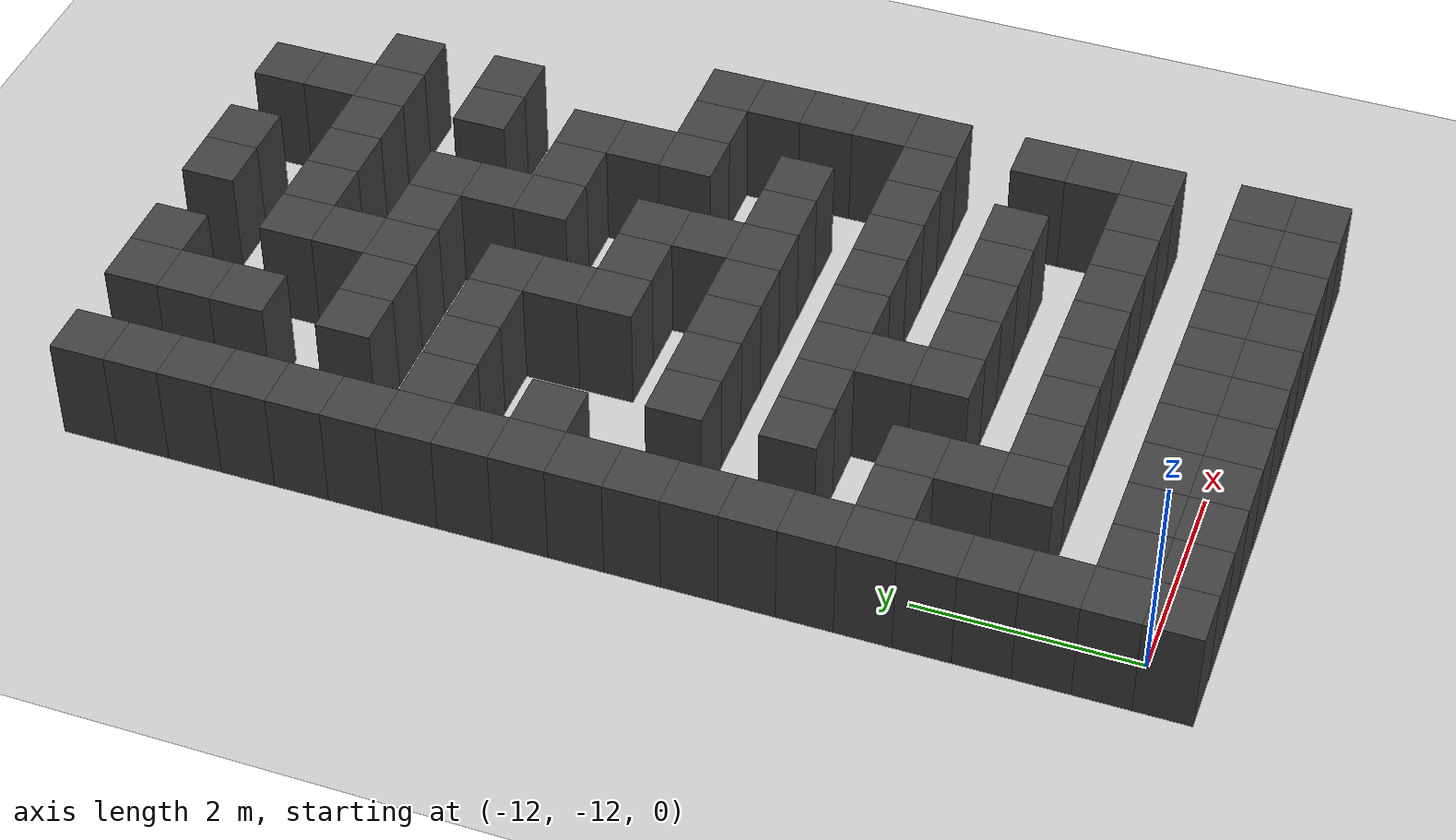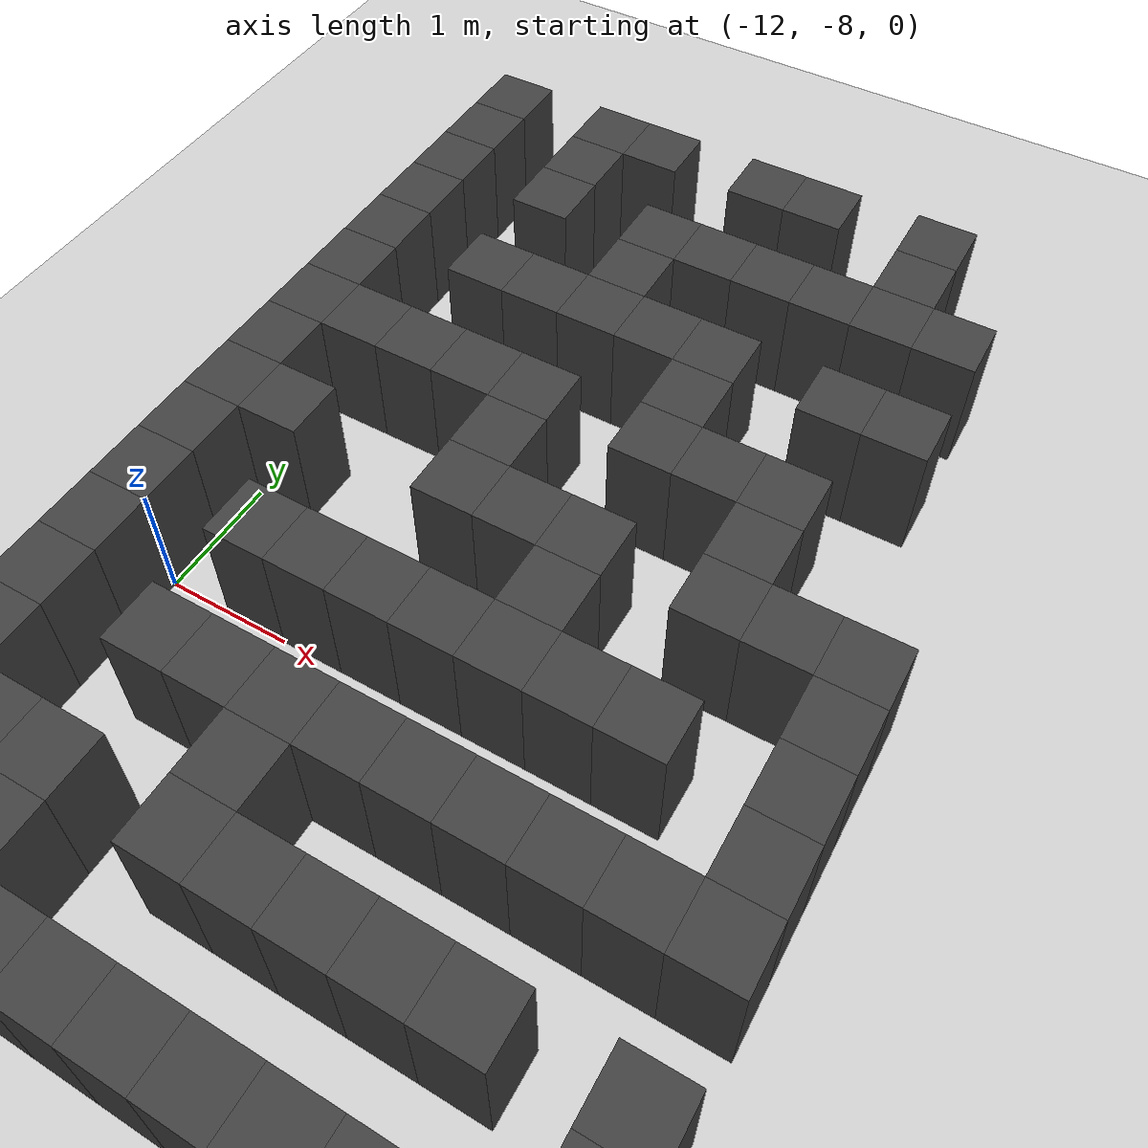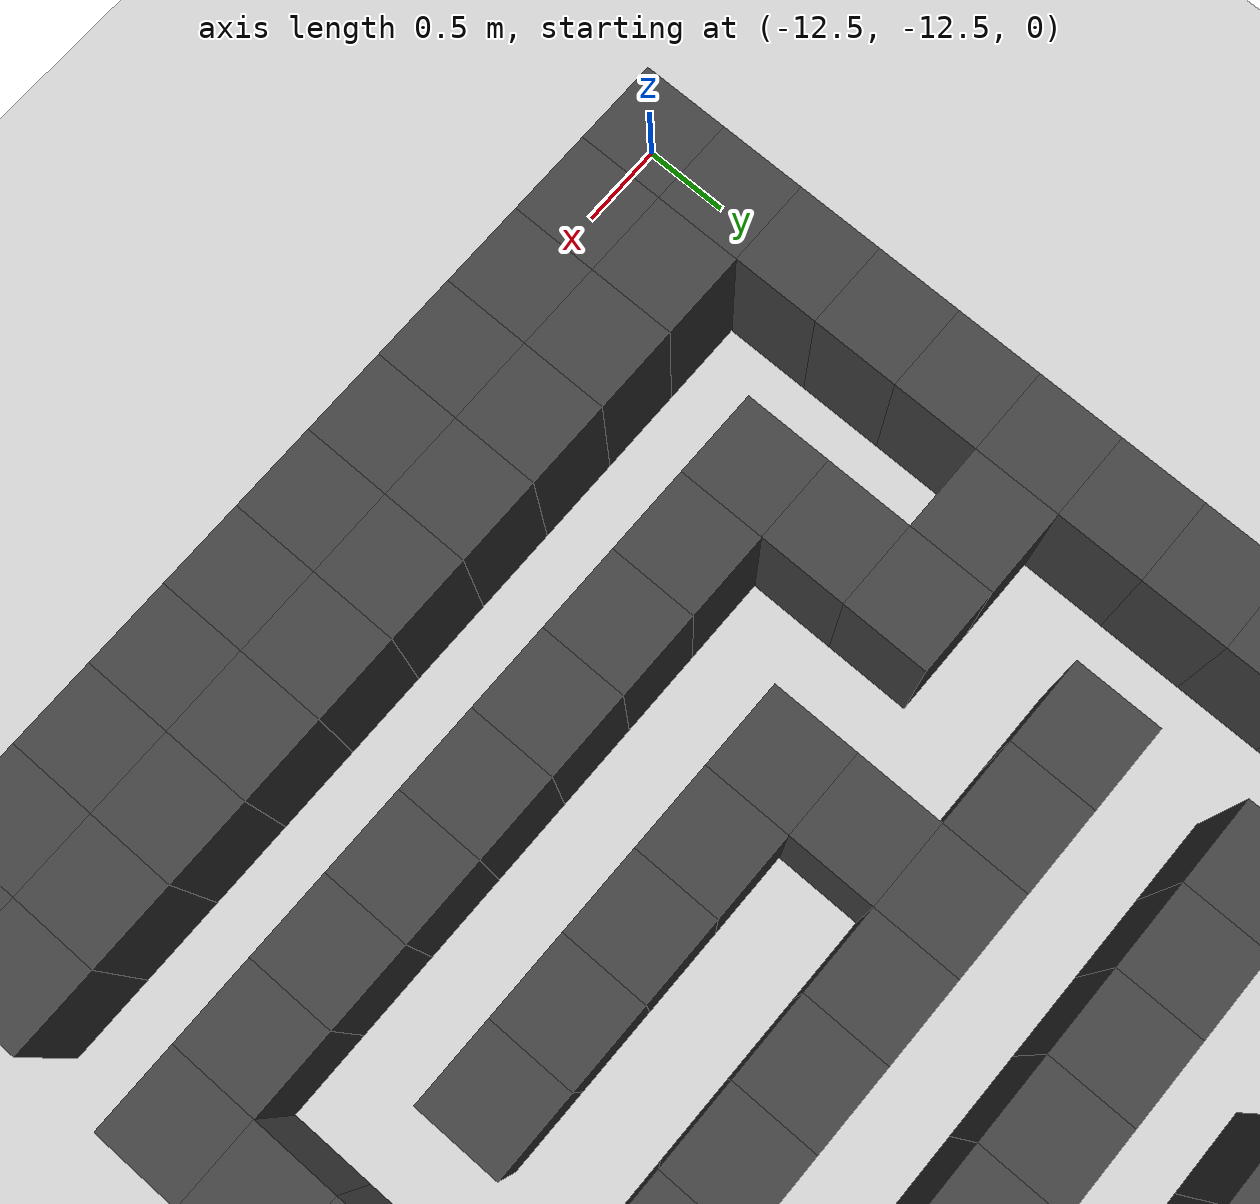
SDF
<sdf version="1.7">
 <world name="map_19217">
  <model name="ground_plane">
   <static>true</static>
   <link name="link">
    <collision name="collision">
     <geometry><plane><normal>0 0 1</normal><size>200 200</size></plane></geometry>
    </collision>
    <visual name="visual">
     <geometry><plane><normal>0 0 1</normal><size>200 200</size></plane></geometry>
     <material><ambient>0.8 0.8 0.8 1</ambient><diffuse>0.8 0.8 0.8 1</diffuse></material>
    </visual>
   </link>
  </model>
  <model name="maze_environment">
   <static>true</static>
   <link name="wall_769">
    <pose>-12.250 -2.750 0.500 0 0 0</pose>
    <collision name="col"><geometry><box><size>0.5 0.5 1.0</size></box></geometry></collision>
    <visual name="vis">
     <geometry><box><size>0.5 0.5 1.0</size></box></geometry>
     <material><ambient>0.15 0.15 0.15 1</ambient><diffuse>0.25 0.25 0.25 1</diffuse></material>
    </visual>
   </link>
   <link name="wall_770">
    <pose>-11.250 -2.750 0.500 0 0 0</pose>
    <collision name="col"><geometry><box><size>0.5 0.5 1.0</size></box></geometry></collision>
    <visual name="vis">
     <geometry><box><size>0.5 0.5 1.0</size></box></geometry>
     <material><ambient>0.15 0.15 0.15 1</ambient><diffuse>0.25 0.25 0.25 1</diffuse></material>
    </visual>
   </link>
   <link name="wall_771">
    <pose>-10.750 -2.750 0.500 0 0 0</pose>
    <collision name="col"><geometry><box><size>0.5 0.5 1.0</size></box></geometry></collision>
    <visual name="vis">
     <geometry><box><size>0.5 0.5 1.0</size></box></geometry>
     <material><ambient>0.15 0.15 0.15 1</ambient><diffuse>0.25 0.25 0.25 1</diffuse></material>
    </visual>
   </link>
   <link name="wall_772">
    <pose>-9.750 -2.750 0.500 0 0 0</pose>
    <collision name="col"><geometry><box><size>0.5 0.5 1.0</size></box></geometry></collision>
    <visual name="vis">
     <geometry><box><size>0.5 0.5 1.0</size></box></geometry>
     <material><ambient>0.15 0.15 0.15 1</ambient><diffuse>0.25 0.25 0.25 1</diffuse></material>
    </visual>
   </link>
   <link name="wall_773">
    <pose>-9.250 -2.750 0.500 0 0 0</pose>
    <collision name="col"><geometry><box><size>0.5 0.5 1.0</size></box></geometry></collision>
    <visual name="vis">
     <geometry><box><size>0.5 0.5 1.0</size></box></geometry>
     <material><ambient>0.15 0.15 0.15 1</ambient><diffuse>0.25 0.25 0.25 1</diffuse></material>
    </visual>
   </link>
   <link name="wall_774">
    <pose>-8.250 -2.750 0.500 0 0 0</pose>
    <collision name="col"><geometry><box><size>0.5 0.5 1.0</size></box></geometry></collision>
    <visual name="vis">
     <geometry><box><size>0.5 0.5 1.0</size></box></geometry>
     <material><ambient>0.15 0.15 0.15 1</ambient><diffuse>0.25 0.25 0.25 1</diffuse></material>
    </visual>
   </link>
   <link name="wall_808">
    <pose>-12.250 -3.250 0.500 0 0 0</pose>
    <collision name="col"><geometry><box><size>0.5 0.5 1.0</size></box></geometry></collision>
    <visual name="vis">
     <geometry><box><size>0.5 0.5 1.0</size></box></geometry>
     <material><ambient>0.15 0.15 0.15 1</ambient><diffuse>0.25 0.25 0.25 1</diffuse></material>
    </visual>
   </link>
   <link name="wall_809">
    <pose>-11.250 -3.250 0.500 0 0 0</pose>
    <collision name="col"><geometry><box><size>0.5 0.5 1.0</size></box></geometry></collision>
    <visual name="vis">
     <geometry><box><size>0.5 0.5 1.0</size></box></geometry>
     <material><ambient>0.15 0.15 0.15 1</ambient><diffuse>0.25 0.25 0.25 1</diffuse></material>
    </visual>
   </link>
   <link name="wall_810">
    <pose>-8.250 -3.250 0.500 0 0 0</pose>
    <collision name="col"><geometry><box><size>0.5 0.5 1.0</size></box></geometry></collision>
    <visual name="vis">
     <geometry><box><size>0.5 0.5 1.0</size></box></geometry>
     <material><ambient>0.15 0.15 0.15 1</ambient><diffuse>0.25 0.25 0.25 1</diffuse></material>
    </visual>
   </link>
   <link name="wall_819">
    <pose>-12.250 -3.750 0.500 0 0 0</pose>
    <collision name="col"><geometry><box><size>0.5 0.5 1.0</size></box></geometry></collision>
    <visual name="vis">
     <geometry><box><size>0.5 0.5 1.0</size></box></geometry>
     <material><ambient>0.15 0.15 0.15 1</ambient><diffuse>0.25 0.25 0.25 1</diffuse></material>
    </visual>
   </link>
   <link name="wall_820">
    <pose>-11.250 -3.750 0.500 0 0 0</pose>
    <collision name="col"><geometry><box><size>0.5 0.5 1.0</size></box></geometry></collision>
    <visual name="vis">
     <geometry><box><size>0.5 0.5 1.0</size></box></geometry>
     <material><ambient>0.15 0.15 0.15 1</ambient><diffuse>0.25 0.25 0.25 1</diffuse></material>
    </visual>
   </link>
   <link name="wall_821">
    <pose>-10.250 -3.750 0.500 0 0 0</pose>
    <collision name="col"><geometry><box><size>0.5 0.5 1.0</size></box></geometry></collision>
    <visual name="vis">
     <geometry><box><size>0.5 0.5 1.0</size></box></geometry>
     <material><ambient>0.15 0.15 0.15 1</ambient><diffuse>0.25 0.25 0.25 1</diffuse></material>
    </visual>
   </link>
   <link name="wall_822">
    <pose>-9.750 -3.750 0.500 0 0 0</pose>
    <collision name="col"><geometry><box><size>0.5 0.5 1.0</size></box></geometry></collision>
    <visual name="vis">
     <geometry><box><size>0.5 0.5 1.0</size></box></geometry>
     <material><ambient>0.15 0.15 0.15 1</ambient><diffuse>0.25 0.25 0.25 1</diffuse></material>
    </visual>
   </link>
   <link name="wall_823">
    <pose>-9.250 -3.750 0.500 0 0 0</pose>
    <collision name="col"><geometry><box><size>0.5 0.5 1.0</size></box></geometry></collision>
    <visual name="vis">
     <geometry><box><size>0.5 0.5 1.0</size></box></geometry>
     <material><ambient>0.15 0.15 0.15 1</ambient><diffuse>0.25 0.25 0.25 1</diffuse></material>
    </visual>
   </link>
   <link name="wall_824">
    <pose>-8.750 -3.750 0.500 0 0 0</pose>
    <collision name="col"><geometry><box><size>0.5 0.5 1.0</size></box></geometry></collision>
    <visual name="vis">
     <geometry><box><size>0.5 0.5 1.0</size></box></geometry>
     <material><ambient>0.15 0.15 0.15 1</ambient><diffuse>0.25 0.25 0.25 1</diffuse></material>
    </visual>
   </link>
   <link name="wall_825">
    <pose>-8.250 -3.750 0.500 0 0 0</pose>
    <collision name="col"><geometry><box><size>0.5 0.5 1.0</size></box></geometry></collision>
    <visual name="vis">
     <geometry><box><size>0.5 0.5 1.0</size></box></geometry>
     <material><ambient>0.15 0.15 0.15 1</ambient><diffuse>0.25 0.25 0.25 1</diffuse></material>
    </visual>
   </link>
   <link name="wall_826">
    <pose>-7.750 -3.750 0.500 0 0 0</pose>
    <collision name="col"><geometry><box><size>0.5 0.5 1.0</size></box></geometry></collision>
    <visual name="vis">
     <geometry><box><size>0.5 0.5 1.0</size></box></geometry>
     <material><ambient>0.15 0.15 0.15 1</ambient><diffuse>0.25 0.25 0.25 1</diffuse></material>
    </visual>
   </link>
   <link name="wall_859">
    <pose>-12.250 -4.250 0.500 0 0 0</pose>
    <collision name="col"><geometry><box><size>0.5 0.5 1.0</size></box></geometry></collision>
    <visual name="vis">
     <geometry><box><size>0.5 0.5 1.0</size></box></geometry>
     <material><ambient>0.15 0.15 0.15 1</ambient><diffuse>0.25 0.25 0.25 1</diffuse></material>
    </visual>
   </link>
   <link name="wall_860">
    <pose>-10.250 -4.250 0.500 0 0 0</pose>
    <collision name="col"><geometry><box><size>0.5 0.5 1.0</size></box></geometry></collision>
    <visual name="vis">
     <geometry><box><size>0.5 0.5 1.0</size></box></geometry>
     <material><ambient>0.15 0.15 0.15 1</ambient><diffuse>0.25 0.25 0.25 1</diffuse></material>
    </visual>
   </link>
   <link name="wall_870">
    <pose>-12.250 -4.750 0.500 0 0 0</pose>
    <collision name="col"><geometry><box><size>0.5 0.5 1.0</size></box></geometry></collision>
    <visual name="vis">
     <geometry><box><size>0.5 0.5 1.0</size></box></geometry>
     <material><ambient>0.15 0.15 0.15 1</ambient><diffuse>0.25 0.25 0.25 1</diffuse></material>
    </visual>
   </link>
   <link name="wall_871">
    <pose>-11.250 -4.750 0.500 0 0 0</pose>
    <collision name="col"><geometry><box><size>0.5 0.5 1.0</size></box></geometry></collision>
    <visual name="vis">
     <geometry><box><size>0.5 0.5 1.0</size></box></geometry>
     <material><ambient>0.15 0.15 0.15 1</ambient><diffuse>0.25 0.25 0.25 1</diffuse></material>
    </visual>
   </link>
   <link name="wall_872">
    <pose>-10.750 -4.750 0.500 0 0 0</pose>
    <collision name="col"><geometry><box><size>0.5 0.5 1.0</size></box></geometry></collision>
    <visual name="vis">
     <geometry><box><size>0.5 0.5 1.0</size></box></geometry>
     <material><ambient>0.15 0.15 0.15 1</ambient><diffuse>0.25 0.25 0.25 1</diffuse></material>
    </visual>
   </link>
   <link name="wall_873">
    <pose>-10.250 -4.750 0.500 0 0 0</pose>
    <collision name="col"><geometry><box><size>0.5 0.5 1.0</size></box></geometry></collision>
    <visual name="vis">
     <geometry><box><size>0.5 0.5 1.0</size></box></geometry>
     <material><ambient>0.15 0.15 0.15 1</ambient><diffuse>0.25 0.25 0.25 1</diffuse></material>
    </visual>
   </link>
   <link name="wall_874">
    <pose>-9.750 -4.750 0.500 0 0 0</pose>
    <collision name="col"><geometry><box><size>0.5 0.5 1.0</size></box></geometry></collision>
    <visual name="vis">
     <geometry><box><size>0.5 0.5 1.0</size></box></geometry>
     <material><ambient>0.15 0.15 0.15 1</ambient><diffuse>0.25 0.25 0.25 1</diffuse></material>
    </visual>
   </link>
   <link name="wall_875">
    <pose>-9.250 -4.750 0.500 0 0 0</pose>
    <collision name="col"><geometry><box><size>0.5 0.5 1.0</size></box></geometry></collision>
    <visual name="vis">
     <geometry><box><size>0.5 0.5 1.0</size></box></geometry>
     <material><ambient>0.15 0.15 0.15 1</ambient><diffuse>0.25 0.25 0.25 1</diffuse></material>
    </visual>
   </link>
   <link name="wall_876">
    <pose>-8.250 -4.750 0.500 0 0 0</pose>
    <collision name="col"><geometry><box><size>0.5 0.5 1.0</size></box></geometry></collision>
    <visual name="vis">
     <geometry><box><size>0.5 0.5 1.0</size></box></geometry>
     <material><ambient>0.15 0.15 0.15 1</ambient><diffuse>0.25 0.25 0.25 1</diffuse></material>
    </visual>
   </link>
   <link name="wall_877">
    <pose>-7.750 -4.750 0.500 0 0 0</pose>
    <collision name="col"><geometry><box><size>0.5 0.5 1.0</size></box></geometry></collision>
    <visual name="vis">
     <geometry><box><size>0.5 0.5 1.0</size></box></geometry>
     <material><ambient>0.15 0.15 0.15 1</ambient><diffuse>0.25 0.25 0.25 1</diffuse></material>
    </visual>
   </link>
   <link name="wall_911">
    <pose>-12.250 -5.250 0.500 0 0 0</pose>
    <collision name="col"><geometry><box><size>0.5 0.5 1.0</size></box></geometry></collision>
    <visual name="vis">
     <geometry><box><size>0.5 0.5 1.0</size></box></geometry>
     <material><ambient>0.15 0.15 0.15 1</ambient><diffuse>0.25 0.25 0.25 1</diffuse></material>
    </visual>
   </link>
   <link name="wall_912">
    <pose>-9.250 -5.250 0.500 0 0 0</pose>
    <collision name="col"><geometry><box><size>0.5 0.5 1.0</size></box></geometry></collision>
    <visual name="vis">
     <geometry><box><size>0.5 0.5 1.0</size></box></geometry>
     <material><ambient>0.15 0.15 0.15 1</ambient><diffuse>0.25 0.25 0.25 1</diffuse></material>
    </visual>
   </link>
   <link name="wall_921">
    <pose>-12.250 -5.750 0.500 0 0 0</pose>
    <collision name="col"><geometry><box><size>0.5 0.5 1.0</size></box></geometry></collision>
    <visual name="vis">
     <geometry><box><size>0.5 0.5 1.0</size></box></geometry>
     <material><ambient>0.15 0.15 0.15 1</ambient><diffuse>0.25 0.25 0.25 1</diffuse></material>
    </visual>
   </link>
   <link name="wall_922">
    <pose>-11.750 -5.750 0.500 0 0 0</pose>
    <collision name="col"><geometry><box><size>0.5 0.5 1.0</size></box></geometry></collision>
    <visual name="vis">
     <geometry><box><size>0.5 0.5 1.0</size></box></geometry>
     <material><ambient>0.15 0.15 0.15 1</ambient><diffuse>0.25 0.25 0.25 1</diffuse></material>
    </visual>
   </link>
   <link name="wall_923">
    <pose>-11.250 -5.750 0.500 0 0 0</pose>
    <collision name="col"><geometry><box><size>0.5 0.5 1.0</size></box></geometry></collision>
    <visual name="vis">
     <geometry><box><size>0.5 0.5 1.0</size></box></geometry>
     <material><ambient>0.15 0.15 0.15 1</ambient><diffuse>0.25 0.25 0.25 1</diffuse></material>
    </visual>
   </link>
   <link name="wall_924">
    <pose>-10.750 -5.750 0.500 0 0 0</pose>
    <collision name="col"><geometry><box><size>0.5 0.5 1.0</size></box></geometry></collision>
    <visual name="vis">
     <geometry><box><size>0.5 0.5 1.0</size></box></geometry>
     <material><ambient>0.15 0.15 0.15 1</ambient><diffuse>0.25 0.25 0.25 1</diffuse></material>
    </visual>
   </link>
   <link name="wall_925">
    <pose>-10.250 -5.750 0.500 0 0 0</pose>
    <collision name="col"><geometry><box><size>0.5 0.5 1.0</size></box></geometry></collision>
    <visual name="vis">
     <geometry><box><size>0.5 0.5 1.0</size></box></geometry>
     <material><ambient>0.15 0.15 0.15 1</ambient><diffuse>0.25 0.25 0.25 1</diffuse></material>
    </visual>
   </link>
   <link name="wall_926">
    <pose>-9.250 -5.750 0.500 0 0 0</pose>
    <collision name="col"><geometry><box><size>0.5 0.5 1.0</size></box></geometry></collision>
    <visual name="vis">
     <geometry><box><size>0.5 0.5 1.0</size></box></geometry>
     <material><ambient>0.15 0.15 0.15 1</ambient><diffuse>0.25 0.25 0.25 1</diffuse></material>
    </visual>
   </link>
   <link name="wall_927">
    <pose>-8.750 -5.750 0.500 0 0 0</pose>
    <collision name="col"><geometry><box><size>0.5 0.5 1.0</size></box></geometry></collision>
    <visual name="vis">
     <geometry><box><size>0.5 0.5 1.0</size></box></geometry>
     <material><ambient>0.15 0.15 0.15 1</ambient><diffuse>0.25 0.25 0.25 1</diffuse></material>
    </visual>
   </link>
   <link name="wall_928">
    <pose>-8.250 -5.750 0.500 0 0 0</pose>
    <collision name="col"><geometry><box><size>0.5 0.5 1.0</size></box></geometry></collision>
    <visual name="vis">
     <geometry><box><size>0.5 0.5 1.0</size></box></geometry>
     <material><ambient>0.15 0.15 0.15 1</ambient><diffuse>0.25 0.25 0.25 1</diffuse></material>
    </visual>
   </link>
   <link name="wall_961">
    <pose>-12.250 -6.250 0.500 0 0 0</pose>
    <collision name="col"><geometry><box><size>0.5 0.5 1.0</size></box></geometry></collision>
    <visual name="vis">
     <geometry><box><size>0.5 0.5 1.0</size></box></geometry>
     <material><ambient>0.15 0.15 0.15 1</ambient><diffuse>0.25 0.25 0.25 1</diffuse></material>
    </visual>
   </link>
   <link name="wall_962">
    <pose>-10.250 -6.250 0.500 0 0 0</pose>
    <collision name="col"><geometry><box><size>0.5 0.5 1.0</size></box></geometry></collision>
    <visual name="vis">
     <geometry><box><size>0.5 0.5 1.0</size></box></geometry>
     <material><ambient>0.15 0.15 0.15 1</ambient><diffuse>0.25 0.25 0.25 1</diffuse></material>
    </visual>
   </link>
   <link name="wall_963">
    <pose>-8.250 -6.250 0.500 0 0 0</pose>
    <collision name="col"><geometry><box><size>0.5 0.5 1.0</size></box></geometry></collision>
    <visual name="vis">
     <geometry><box><size>0.5 0.5 1.0</size></box></geometry>
     <material><ambient>0.15 0.15 0.15 1</ambient><diffuse>0.25 0.25 0.25 1</diffuse></material>
    </visual>
   </link>
   <link name="wall_972">
    <pose>-12.250 -6.750 0.500 0 0 0</pose>
    <collision name="col"><geometry><box><size>0.5 0.5 1.0</size></box></geometry></collision>
    <visual name="vis">
     <geometry><box><size>0.5 0.5 1.0</size></box></geometry>
     <material><ambient>0.15 0.15 0.15 1</ambient><diffuse>0.25 0.25 0.25 1</diffuse></material>
    </visual>
   </link>
   <link name="wall_973">
    <pose>-11.750 -6.750 0.500 0 0 0</pose>
    <collision name="col"><geometry><box><size>0.5 0.5 1.0</size></box></geometry></collision>
    <visual name="vis">
     <geometry><box><size>0.5 0.5 1.0</size></box></geometry>
     <material><ambient>0.15 0.15 0.15 1</ambient><diffuse>0.25 0.25 0.25 1</diffuse></material>
    </visual>
   </link>
   <link name="wall_974">
    <pose>-10.250 -6.750 0.500 0 0 0</pose>
    <collision name="col"><geometry><box><size>0.5 0.5 1.0</size></box></geometry></collision>
    <visual name="vis">
     <geometry><box><size>0.5 0.5 1.0</size></box></geometry>
     <material><ambient>0.15 0.15 0.15 1</ambient><diffuse>0.25 0.25 0.25 1</diffuse></material>
    </visual>
   </link>
   <link name="wall_975">
    <pose>-9.750 -6.750 0.500 0 0 0</pose>
    <collision name="col"><geometry><box><size>0.5 0.5 1.0</size></box></geometry></collision>
    <visual name="vis">
     <geometry><box><size>0.5 0.5 1.0</size></box></geometry>
     <material><ambient>0.15 0.15 0.15 1</ambient><diffuse>0.25 0.25 0.25 1</diffuse></material>
    </visual>
   </link>
   <link name="wall_976">
    <pose>-9.250 -6.750 0.500 0 0 0</pose>
    <collision name="col"><geometry><box><size>0.5 0.5 1.0</size></box></geometry></collision>
    <visual name="vis">
     <geometry><box><size>0.5 0.5 1.0</size></box></geometry>
     <material><ambient>0.15 0.15 0.15 1</ambient><diffuse>0.25 0.25 0.25 1</diffuse></material>
    </visual>
   </link>
   <link name="wall_977">
    <pose>-8.250 -6.750 0.500 0 0 0</pose>
    <collision name="col"><geometry><box><size>0.5 0.5 1.0</size></box></geometry></collision>
    <visual name="vis">
     <geometry><box><size>0.5 0.5 1.0</size></box></geometry>
     <material><ambient>0.15 0.15 0.15 1</ambient><diffuse>0.25 0.25 0.25 1</diffuse></material>
    </visual>
   </link>
   <link name="wall_978">
    <pose>-7.750 -6.750 0.500 0 0 0</pose>
    <collision name="col"><geometry><box><size>0.5 0.5 1.0</size></box></geometry></collision>
    <visual name="vis">
     <geometry><box><size>0.5 0.5 1.0</size></box></geometry>
     <material><ambient>0.15 0.15 0.15 1</ambient><diffuse>0.25 0.25 0.25 1</diffuse></material>
    </visual>
   </link>
   <link name="wall_979">
    <pose>-7.250 -6.750 0.500 0 0 0</pose>
    <collision name="col"><geometry><box><size>0.5 0.5 1.0</size></box></geometry></collision>
    <visual name="vis">
     <geometry><box><size>0.5 0.5 1.0</size></box></geometry>
     <material><ambient>0.15 0.15 0.15 1</ambient><diffuse>0.25 0.25 0.25 1</diffuse></material>
    </visual>
   </link>
   <link name="wall_1007">
    <pose>-12.250 -7.250 0.500 0 0 0</pose>
    <collision name="col"><geometry><box><size>0.5 0.5 1.0</size></box></geometry></collision>
    <visual name="vis">
     <geometry><box><size>0.5 0.5 1.0</size></box></geometry>
     <material><ambient>0.15 0.15 0.15 1</ambient><diffuse>0.25 0.25 0.25 1</diffuse></material>
    </visual>
   </link>
   <link name="wall_1008">
    <pose>-9.250 -7.250 0.500 0 0 0</pose>
    <collision name="col"><geometry><box><size>0.5 0.5 1.0</size></box></geometry></collision>
    <visual name="vis">
     <geometry><box><size>0.5 0.5 1.0</size></box></geometry>
     <material><ambient>0.15 0.15 0.15 1</ambient><diffuse>0.25 0.25 0.25 1</diffuse></material>
    </visual>
   </link>
   <link name="wall_1009">
    <pose>-7.250 -7.250 0.500 0 0 0</pose>
    <collision name="col"><geometry><box><size>0.5 0.5 1.0</size></box></geometry></collision>
    <visual name="vis">
     <geometry><box><size>0.5 0.5 1.0</size></box></geometry>
     <material><ambient>0.15 0.15 0.15 1</ambient><diffuse>0.25 0.25 0.25 1</diffuse></material>
    </visual>
   </link>
   <link name="wall_1023">
    <pose>-12.250 -7.750 0.500 0 0 0</pose>
    <collision name="col"><geometry><box><size>0.5 0.5 1.0</size></box></geometry></collision>
    <visual name="vis">
     <geometry><box><size>0.5 0.5 1.0</size></box></geometry>
     <material><ambient>0.15 0.15 0.15 1</ambient><diffuse>0.25 0.25 0.25 1</diffuse></material>
    </visual>
   </link>
   <link name="wall_1024">
    <pose>-11.250 -7.750 0.500 0 0 0</pose>
    <collision name="col"><geometry><box><size>0.5 0.5 1.0</size></box></geometry></collision>
    <visual name="vis">
     <geometry><box><size>0.5 0.5 1.0</size></box></geometry>
     <material><ambient>0.15 0.15 0.15 1</ambient><diffuse>0.25 0.25 0.25 1</diffuse></material>
    </visual>
   </link>
   <link name="wall_1025">
    <pose>-10.750 -7.750 0.500 0 0 0</pose>
    <collision name="col"><geometry><box><size>0.5 0.5 1.0</size></box></geometry></collision>
    <visual name="vis">
     <geometry><box><size>0.5 0.5 1.0</size></box></geometry>
     <material><ambient>0.15 0.15 0.15 1</ambient><diffuse>0.25 0.25 0.25 1</diffuse></material>
    </visual>
   </link>
   <link name="wall_1026">
    <pose>-10.250 -7.750 0.500 0 0 0</pose>
    <collision name="col"><geometry><box><size>0.5 0.5 1.0</size></box></geometry></collision>
    <visual name="vis">
     <geometry><box><size>0.5 0.5 1.0</size></box></geometry>
     <material><ambient>0.15 0.15 0.15 1</ambient><diffuse>0.25 0.25 0.25 1</diffuse></material>
    </visual>
   </link>
   <link name="wall_1027">
    <pose>-9.750 -7.750 0.500 0 0 0</pose>
    <collision name="col"><geometry><box><size>0.5 0.5 1.0</size></box></geometry></collision>
    <visual name="vis">
     <geometry><box><size>0.5 0.5 1.0</size></box></geometry>
     <material><ambient>0.15 0.15 0.15 1</ambient><diffuse>0.25 0.25 0.25 1</diffuse></material>
    </visual>
   </link>
   <link name="wall_1028">
    <pose>-9.250 -7.750 0.500 0 0 0</pose>
    <collision name="col"><geometry><box><size>0.5 0.5 1.0</size></box></geometry></collision>
    <visual name="vis">
     <geometry><box><size>0.5 0.5 1.0</size></box></geometry>
     <material><ambient>0.15 0.15 0.15 1</ambient><diffuse>0.25 0.25 0.25 1</diffuse></material>
    </visual>
   </link>
   <link name="wall_1029">
    <pose>-8.750 -7.750 0.500 0 0 0</pose>
    <collision name="col"><geometry><box><size>0.5 0.5 1.0</size></box></geometry></collision>
    <visual name="vis">
     <geometry><box><size>0.5 0.5 1.0</size></box></geometry>
     <material><ambient>0.15 0.15 0.15 1</ambient><diffuse>0.25 0.25 0.25 1</diffuse></material>
    </visual>
   </link>
   <link name="wall_1030">
    <pose>-8.250 -7.750 0.500 0 0 0</pose>
    <collision name="col"><geometry><box><size>0.5 0.5 1.0</size></box></geometry></collision>
    <visual name="vis">
     <geometry><box><size>0.5 0.5 1.0</size></box></geometry>
     <material><ambient>0.15 0.15 0.15 1</ambient><diffuse>0.25 0.25 0.25 1</diffuse></material>
    </visual>
   </link>
   <link name="wall_1031">
    <pose>-7.250 -7.750 0.500 0 0 0</pose>
    <collision name="col"><geometry><box><size>0.5 0.5 1.0</size></box></geometry></collision>
    <visual name="vis">
     <geometry><box><size>0.5 0.5 1.0</size></box></geometry>
     <material><ambient>0.15 0.15 0.15 1</ambient><diffuse>0.25 0.25 0.25 1</diffuse></material>
    </visual>
   </link>
   <link name="wall_1060">
    <pose>-12.250 -8.250 0.500 0 0 0</pose>
    <collision name="col"><geometry><box><size>0.5 0.5 1.0</size></box></geometry></collision>
    <visual name="vis">
     <geometry><box><size>0.5 0.5 1.0</size></box></geometry>
     <material><ambient>0.15 0.15 0.15 1</ambient><diffuse>0.25 0.25 0.25 1</diffuse></material>
    </visual>
   </link>
   <link name="wall_1061">
    <pose>-7.250 -8.250 0.500 0 0 0</pose>
    <collision name="col"><geometry><box><size>0.5 0.5 1.0</size></box></geometry></collision>
    <visual name="vis">
     <geometry><box><size>0.5 0.5 1.0</size></box></geometry>
     <material><ambient>0.15 0.15 0.15 1</ambient><diffuse>0.25 0.25 0.25 1</diffuse></material>
    </visual>
   </link>
   <link name="wall_1072">
    <pose>-12.250 -8.750 0.500 0 0 0</pose>
    <collision name="col"><geometry><box><size>0.5 0.5 1.0</size></box></geometry></collision>
    <visual name="vis">
     <geometry><box><size>0.5 0.5 1.0</size></box></geometry>
     <material><ambient>0.15 0.15 0.15 1</ambient><diffuse>0.25 0.25 0.25 1</diffuse></material>
    </visual>
   </link>
   <link name="wall_1073">
    <pose>-11.250 -8.750 0.500 0 0 0</pose>
    <collision name="col"><geometry><box><size>0.5 0.5 1.0</size></box></geometry></collision>
    <visual name="vis">
     <geometry><box><size>0.5 0.5 1.0</size></box></geometry>
     <material><ambient>0.15 0.15 0.15 1</ambient><diffuse>0.25 0.25 0.25 1</diffuse></material>
    </visual>
   </link>
   <link name="wall_1074">
    <pose>-10.750 -8.750 0.500 0 0 0</pose>
    <collision name="col"><geometry><box><size>0.5 0.5 1.0</size></box></geometry></collision>
    <visual name="vis">
     <geometry><box><size>0.5 0.5 1.0</size></box></geometry>
     <material><ambient>0.15 0.15 0.15 1</ambient><diffuse>0.25 0.25 0.25 1</diffuse></material>
    </visual>
   </link>
   <link name="wall_1075">
    <pose>-10.250 -8.750 0.500 0 0 0</pose>
    <collision name="col"><geometry><box><size>0.5 0.5 1.0</size></box></geometry></collision>
    <visual name="vis">
     <geometry><box><size>0.5 0.5 1.0</size></box></geometry>
     <material><ambient>0.15 0.15 0.15 1</ambient><diffuse>0.25 0.25 0.25 1</diffuse></material>
    </visual>
   </link>
   <link name="wall_1076">
    <pose>-9.750 -8.750 0.500 0 0 0</pose>
    <collision name="col"><geometry><box><size>0.5 0.5 1.0</size></box></geometry></collision>
    <visual name="vis">
     <geometry><box><size>0.5 0.5 1.0</size></box></geometry>
     <material><ambient>0.15 0.15 0.15 1</ambient><diffuse>0.25 0.25 0.25 1</diffuse></material>
    </visual>
   </link>
   <link name="wall_1077">
    <pose>-9.250 -8.750 0.500 0 0 0</pose>
    <collision name="col"><geometry><box><size>0.5 0.5 1.0</size></box></geometry></collision>
    <visual name="vis">
     <geometry><box><size>0.5 0.5 1.0</size></box></geometry>
     <material><ambient>0.15 0.15 0.15 1</ambient><diffuse>0.25 0.25 0.25 1</diffuse></material>
    </visual>
   </link>
   <link name="wall_1078">
    <pose>-8.750 -8.750 0.500 0 0 0</pose>
    <collision name="col"><geometry><box><size>0.5 0.5 1.0</size></box></geometry></collision>
    <visual name="vis">
     <geometry><box><size>0.5 0.5 1.0</size></box></geometry>
     <material><ambient>0.15 0.15 0.15 1</ambient><diffuse>0.25 0.25 0.25 1</diffuse></material>
    </visual>
   </link>
   <link name="wall_1079">
    <pose>-8.250 -8.750 0.500 0 0 0</pose>
    <collision name="col"><geometry><box><size>0.5 0.5 1.0</size></box></geometry></collision>
    <visual name="vis">
     <geometry><box><size>0.5 0.5 1.0</size></box></geometry>
     <material><ambient>0.15 0.15 0.15 1</ambient><diffuse>0.25 0.25 0.25 1</diffuse></material>
    </visual>
   </link>
   <link name="wall_1080">
    <pose>-7.750 -8.750 0.500 0 0 0</pose>
    <collision name="col"><geometry><box><size>0.5 0.5 1.0</size></box></geometry></collision>
    <visual name="vis">
     <geometry><box><size>0.5 0.5 1.0</size></box></geometry>
     <material><ambient>0.15 0.15 0.15 1</ambient><diffuse>0.25 0.25 0.25 1</diffuse></material>
    </visual>
   </link>
   <link name="wall_1081">
    <pose>-7.250 -8.750 0.500 0 0 0</pose>
    <collision name="col"><geometry><box><size>0.5 0.5 1.0</size></box></geometry></collision>
    <visual name="vis">
     <geometry><box><size>0.5 0.5 1.0</size></box></geometry>
     <material><ambient>0.15 0.15 0.15 1</ambient><diffuse>0.25 0.25 0.25 1</diffuse></material>
    </visual>
   </link>
   <link name="wall_1113">
    <pose>-12.250 -9.250 0.500 0 0 0</pose>
    <collision name="col"><geometry><box><size>0.5 0.5 1.0</size></box></geometry></collision>
    <visual name="vis">
     <geometry><box><size>0.5 0.5 1.0</size></box></geometry>
     <material><ambient>0.15 0.15 0.15 1</ambient><diffuse>0.25 0.25 0.25 1</diffuse></material>
    </visual>
   </link>
   <link name="wall_1114">
    <pose>-10.250 -9.250 0.500 0 0 0</pose>
    <collision name="col"><geometry><box><size>0.5 0.5 1.0</size></box></geometry></collision>
    <visual name="vis">
     <geometry><box><size>0.5 0.5 1.0</size></box></geometry>
     <material><ambient>0.15 0.15 0.15 1</ambient><diffuse>0.25 0.25 0.25 1</diffuse></material>
    </visual>
   </link>
   <link name="wall_1126">
    <pose>-12.250 -9.750 0.500 0 0 0</pose>
    <collision name="col"><geometry><box><size>0.5 0.5 1.0</size></box></geometry></collision>
    <visual name="vis">
     <geometry><box><size>0.5 0.5 1.0</size></box></geometry>
     <material><ambient>0.15 0.15 0.15 1</ambient><diffuse>0.25 0.25 0.25 1</diffuse></material>
    </visual>
   </link>
   <link name="wall_1127">
    <pose>-11.750 -9.750 0.500 0 0 0</pose>
    <collision name="col"><geometry><box><size>0.5 0.5 1.0</size></box></geometry></collision>
    <visual name="vis">
     <geometry><box><size>0.5 0.5 1.0</size></box></geometry>
     <material><ambient>0.15 0.15 0.15 1</ambient><diffuse>0.25 0.25 0.25 1</diffuse></material>
    </visual>
   </link>
   <link name="wall_1128">
    <pose>-11.250 -9.750 0.500 0 0 0</pose>
    <collision name="col"><geometry><box><size>0.5 0.5 1.0</size></box></geometry></collision>
    <visual name="vis">
     <geometry><box><size>0.5 0.5 1.0</size></box></geometry>
     <material><ambient>0.15 0.15 0.15 1</ambient><diffuse>0.25 0.25 0.25 1</diffuse></material>
    </visual>
   </link>
   <link name="wall_1129">
    <pose>-10.250 -9.750 0.500 0 0 0</pose>
    <collision name="col"><geometry><box><size>0.5 0.5 1.0</size></box></geometry></collision>
    <visual name="vis">
     <geometry><box><size>0.5 0.5 1.0</size></box></geometry>
     <material><ambient>0.15 0.15 0.15 1</ambient><diffuse>0.25 0.25 0.25 1</diffuse></material>
    </visual>
   </link>
   <link name="wall_1130">
    <pose>-9.750 -9.750 0.500 0 0 0</pose>
    <collision name="col"><geometry><box><size>0.5 0.5 1.0</size></box></geometry></collision>
    <visual name="vis">
     <geometry><box><size>0.5 0.5 1.0</size></box></geometry>
     <material><ambient>0.15 0.15 0.15 1</ambient><diffuse>0.25 0.25 0.25 1</diffuse></material>
    </visual>
   </link>
   <link name="wall_1131">
    <pose>-9.250 -9.750 0.500 0 0 0</pose>
    <collision name="col"><geometry><box><size>0.5 0.5 1.0</size></box></geometry></collision>
    <visual name="vis">
     <geometry><box><size>0.5 0.5 1.0</size></box></geometry>
     <material><ambient>0.15 0.15 0.15 1</ambient><diffuse>0.25 0.25 0.25 1</diffuse></material>
    </visual>
   </link>
   <link name="wall_1132">
    <pose>-8.750 -9.750 0.500 0 0 0</pose>
    <collision name="col"><geometry><box><size>0.5 0.5 1.0</size></box></geometry></collision>
    <visual name="vis">
     <geometry><box><size>0.5 0.5 1.0</size></box></geometry>
     <material><ambient>0.15 0.15 0.15 1</ambient><diffuse>0.25 0.25 0.25 1</diffuse></material>
    </visual>
   </link>
   <link name="wall_1133">
    <pose>-8.250 -9.750 0.500 0 0 0</pose>
    <collision name="col"><geometry><box><size>0.5 0.5 1.0</size></box></geometry></collision>
    <visual name="vis">
     <geometry><box><size>0.5 0.5 1.0</size></box></geometry>
     <material><ambient>0.15 0.15 0.15 1</ambient><diffuse>0.25 0.25 0.25 1</diffuse></material>
    </visual>
   </link>
   <link name="wall_1134">
    <pose>-7.250 -9.750 0.500 0 0 0</pose>
    <collision name="col"><geometry><box><size>0.5 0.5 1.0</size></box></geometry></collision>
    <visual name="vis">
     <geometry><box><size>0.5 0.5 1.0</size></box></geometry>
     <material><ambient>0.15 0.15 0.15 1</ambient><diffuse>0.25 0.25 0.25 1</diffuse></material>
    </visual>
   </link>
   <link name="wall_1163">
    <pose>-12.250 -10.250 0.500 0 0 0</pose>
    <collision name="col"><geometry><box><size>0.5 0.5 1.0</size></box></geometry></collision>
    <visual name="vis">
     <geometry><box><size>0.5 0.5 1.0</size></box></geometry>
     <material><ambient>0.15 0.15 0.15 1</ambient><diffuse>0.25 0.25 0.25 1</diffuse></material>
    </visual>
   </link>
   <link name="wall_1164">
    <pose>-11.250 -10.250 0.500 0 0 0</pose>
    <collision name="col"><geometry><box><size>0.5 0.5 1.0</size></box></geometry></collision>
    <visual name="vis">
     <geometry><box><size>0.5 0.5 1.0</size></box></geometry>
     <material><ambient>0.15 0.15 0.15 1</ambient><diffuse>0.25 0.25 0.25 1</diffuse></material>
    </visual>
   </link>
   <link name="wall_1165">
    <pose>-7.250 -10.250 0.500 0 0 0</pose>
    <collision name="col"><geometry><box><size>0.5 0.5 1.0</size></box></geometry></collision>
    <visual name="vis">
     <geometry><box><size>0.5 0.5 1.0</size></box></geometry>
     <material><ambient>0.15 0.15 0.15 1</ambient><diffuse>0.25 0.25 0.25 1</diffuse></material>
    </visual>
   </link>
   <link name="wall_1178">
    <pose>-12.250 -10.750 0.500 0 0 0</pose>
    <collision name="col"><geometry><box><size>0.5 0.5 1.0</size></box></geometry></collision>
    <visual name="vis">
     <geometry><box><size>0.5 0.5 1.0</size></box></geometry>
     <material><ambient>0.15 0.15 0.15 1</ambient><diffuse>0.25 0.25 0.25 1</diffuse></material>
    </visual>
   </link>
   <link name="wall_1179">
    <pose>-11.250 -10.750 0.500 0 0 0</pose>
    <collision name="col"><geometry><box><size>0.5 0.5 1.0</size></box></geometry></collision>
    <visual name="vis">
     <geometry><box><size>0.5 0.5 1.0</size></box></geometry>
     <material><ambient>0.15 0.15 0.15 1</ambient><diffuse>0.25 0.25 0.25 1</diffuse></material>
    </visual>
   </link>
   <link name="wall_1180">
    <pose>-10.750 -10.750 0.500 0 0 0</pose>
    <collision name="col"><geometry><box><size>0.5 0.5 1.0</size></box></geometry></collision>
    <visual name="vis">
     <geometry><box><size>0.5 0.5 1.0</size></box></geometry>
     <material><ambient>0.15 0.15 0.15 1</ambient><diffuse>0.25 0.25 0.25 1</diffuse></material>
    </visual>
   </link>
   <link name="wall_1181">
    <pose>-10.250 -10.750 0.500 0 0 0</pose>
    <collision name="col"><geometry><box><size>0.5 0.5 1.0</size></box></geometry></collision>
    <visual name="vis">
     <geometry><box><size>0.5 0.5 1.0</size></box></geometry>
     <material><ambient>0.15 0.15 0.15 1</ambient><diffuse>0.25 0.25 0.25 1</diffuse></material>
    </visual>
   </link>
   <link name="wall_1182">
    <pose>-9.750 -10.750 0.500 0 0 0</pose>
    <collision name="col"><geometry><box><size>0.5 0.5 1.0</size></box></geometry></collision>
    <visual name="vis">
     <geometry><box><size>0.5 0.5 1.0</size></box></geometry>
     <material><ambient>0.15 0.15 0.15 1</ambient><diffuse>0.25 0.25 0.25 1</diffuse></material>
    </visual>
   </link>
   <link name="wall_1183">
    <pose>-9.250 -10.750 0.500 0 0 0</pose>
    <collision name="col"><geometry><box><size>0.5 0.5 1.0</size></box></geometry></collision>
    <visual name="vis">
     <geometry><box><size>0.5 0.5 1.0</size></box></geometry>
     <material><ambient>0.15 0.15 0.15 1</ambient><diffuse>0.25 0.25 0.25 1</diffuse></material>
    </visual>
   </link>
   <link name="wall_1184">
    <pose>-8.750 -10.750 0.500 0 0 0</pose>
    <collision name="col"><geometry><box><size>0.5 0.5 1.0</size></box></geometry></collision>
    <visual name="vis">
     <geometry><box><size>0.5 0.5 1.0</size></box></geometry>
     <material><ambient>0.15 0.15 0.15 1</ambient><diffuse>0.25 0.25 0.25 1</diffuse></material>
    </visual>
   </link>
   <link name="wall_1185">
    <pose>-8.250 -10.750 0.500 0 0 0</pose>
    <collision name="col"><geometry><box><size>0.5 0.5 1.0</size></box></geometry></collision>
    <visual name="vis">
     <geometry><box><size>0.5 0.5 1.0</size></box></geometry>
     <material><ambient>0.15 0.15 0.15 1</ambient><diffuse>0.25 0.25 0.25 1</diffuse></material>
    </visual>
   </link>
   <link name="wall_1186">
    <pose>-7.750 -10.750 0.500 0 0 0</pose>
    <collision name="col"><geometry><box><size>0.5 0.5 1.0</size></box></geometry></collision>
    <visual name="vis">
     <geometry><box><size>0.5 0.5 1.0</size></box></geometry>
     <material><ambient>0.15 0.15 0.15 1</ambient><diffuse>0.25 0.25 0.25 1</diffuse></material>
    </visual>
   </link>
   <link name="wall_1187">
    <pose>-7.250 -10.750 0.500 0 0 0</pose>
    <collision name="col"><geometry><box><size>0.5 0.5 1.0</size></box></geometry></collision>
    <visual name="vis">
     <geometry><box><size>0.5 0.5 1.0</size></box></geometry>
     <material><ambient>0.15 0.15 0.15 1</ambient><diffuse>0.25 0.25 0.25 1</diffuse></material>
    </visual>
   </link>
   <link name="wall_1216">
    <pose>-12.250 -11.250 0.500 0 0 0</pose>
    <collision name="col"><geometry><box><size>0.5 0.5 1.0</size></box></geometry></collision>
    <visual name="vis">
     <geometry><box><size>0.5 0.5 1.0</size></box></geometry>
     <material><ambient>0.15 0.15 0.15 1</ambient><diffuse>0.25 0.25 0.25 1</diffuse></material>
    </visual>
   </link>
   <link name="wall_1222">
    <pose>-12.250 -11.750 0.500 0 0 0</pose>
    <collision name="col"><geometry><box><size>0.5 0.5 1.0</size></box></geometry></collision>
    <visual name="vis">
     <geometry><box><size>0.5 0.5 1.0</size></box></geometry>
     <material><ambient>0.15 0.15 0.15 1</ambient><diffuse>0.25 0.25 0.25 1</diffuse></material>
    </visual>
   </link>
   <link name="wall_1223">
    <pose>-11.750 -11.750 0.500 0 0 0</pose>
    <collision name="col"><geometry><box><size>0.5 0.5 1.0</size></box></geometry></collision>
    <visual name="vis">
     <geometry><box><size>0.5 0.5 1.0</size></box></geometry>
     <material><ambient>0.15 0.15 0.15 1</ambient><diffuse>0.25 0.25 0.25 1</diffuse></material>
    </visual>
   </link>
   <link name="wall_1224">
    <pose>-11.250 -11.750 0.500 0 0 0</pose>
    <collision name="col"><geometry><box><size>0.5 0.5 1.0</size></box></geometry></collision>
    <visual name="vis">
     <geometry><box><size>0.5 0.5 1.0</size></box></geometry>
     <material><ambient>0.15 0.15 0.15 1</ambient><diffuse>0.25 0.25 0.25 1</diffuse></material>
    </visual>
   </link>
   <link name="wall_1225">
    <pose>-10.750 -11.750 0.500 0 0 0</pose>
    <collision name="col"><geometry><box><size>0.5 0.5 1.0</size></box></geometry></collision>
    <visual name="vis">
     <geometry><box><size>0.5 0.5 1.0</size></box></geometry>
     <material><ambient>0.15 0.15 0.15 1</ambient><diffuse>0.25 0.25 0.25 1</diffuse></material>
    </visual>
   </link>
   <link name="wall_1226">
    <pose>-10.250 -11.750 0.500 0 0 0</pose>
    <collision name="col"><geometry><box><size>0.5 0.5 1.0</size></box></geometry></collision>
    <visual name="vis">
     <geometry><box><size>0.5 0.5 1.0</size></box></geometry>
     <material><ambient>0.15 0.15 0.15 1</ambient><diffuse>0.25 0.25 0.25 1</diffuse></material>
    </visual>
   </link>
   <link name="wall_1227">
    <pose>-9.750 -11.750 0.500 0 0 0</pose>
    <collision name="col"><geometry><box><size>0.5 0.5 1.0</size></box></geometry></collision>
    <visual name="vis">
     <geometry><box><size>0.5 0.5 1.0</size></box></geometry>
     <material><ambient>0.15 0.15 0.15 1</ambient><diffuse>0.25 0.25 0.25 1</diffuse></material>
    </visual>
   </link>
   <link name="wall_1228">
    <pose>-9.250 -11.750 0.500 0 0 0</pose>
    <collision name="col"><geometry><box><size>0.5 0.5 1.0</size></box></geometry></collision>
    <visual name="vis">
     <geometry><box><size>0.5 0.5 1.0</size></box></geometry>
     <material><ambient>0.15 0.15 0.15 1</ambient><diffuse>0.25 0.25 0.25 1</diffuse></material>
    </visual>
   </link>
   <link name="wall_1229">
    <pose>-8.750 -11.750 0.500 0 0 0</pose>
    <collision name="col"><geometry><box><size>0.5 0.5 1.0</size></box></geometry></collision>
    <visual name="vis">
     <geometry><box><size>0.5 0.5 1.0</size></box></geometry>
     <material><ambient>0.15 0.15 0.15 1</ambient><diffuse>0.25 0.25 0.25 1</diffuse></material>
    </visual>
   </link>
   <link name="wall_1230">
    <pose>-8.250 -11.750 0.500 0 0 0</pose>
    <collision name="col"><geometry><box><size>0.5 0.5 1.0</size></box></geometry></collision>
    <visual name="vis">
     <geometry><box><size>0.5 0.5 1.0</size></box></geometry>
     <material><ambient>0.15 0.15 0.15 1</ambient><diffuse>0.25 0.25 0.25 1</diffuse></material>
    </visual>
   </link>
   <link name="wall_1231">
    <pose>-7.750 -11.750 0.500 0 0 0</pose>
    <collision name="col"><geometry><box><size>0.5 0.5 1.0</size></box></geometry></collision>
    <visual name="vis">
     <geometry><box><size>0.5 0.5 1.0</size></box></geometry>
     <material><ambient>0.15 0.15 0.15 1</ambient><diffuse>0.25 0.25 0.25 1</diffuse></material>
    </visual>
   </link>
   <link name="wall_1232">
    <pose>-7.250 -11.750 0.500 0 0 0</pose>
    <collision name="col"><geometry><box><size>0.5 0.5 1.0</size></box></geometry></collision>
    <visual name="vis">
     <geometry><box><size>0.5 0.5 1.0</size></box></geometry>
     <material><ambient>0.15 0.15 0.15 1</ambient><diffuse>0.25 0.25 0.25 1</diffuse></material>
    </visual>
   </link>
   <link name="wall_1270">
    <pose>-12.250 -12.250 0.500 0 0 0</pose>
    <collision name="col"><geometry><box><size>0.5 0.5 1.0</size></box></geometry></collision>
    <visual name="vis">
     <geometry><box><size>0.5 0.5 1.0</size></box></geometry>
     <material><ambient>0.15 0.15 0.15 1</ambient><diffuse>0.25 0.25 0.25 1</diffuse></material>
    </visual>
   </link>
   <link name="wall_1271">
    <pose>-11.750 -12.250 0.500 0 0 0</pose>
    <collision name="col"><geometry><box><size>0.5 0.5 1.0</size></box></geometry></collision>
    <visual name="vis">
     <geometry><box><size>0.5 0.5 1.0</size></box></geometry>
     <material><ambient>0.15 0.15 0.15 1</ambient><diffuse>0.25 0.25 0.25 1</diffuse></material>
    </visual>
   </link>
   <link name="wall_1272">
    <pose>-11.250 -12.250 0.500 0 0 0</pose>
    <collision name="col"><geometry><box><size>0.5 0.5 1.0</size></box></geometry></collision>
    <visual name="vis">
     <geometry><box><size>0.5 0.5 1.0</size></box></geometry>
     <material><ambient>0.15 0.15 0.15 1</ambient><diffuse>0.25 0.25 0.25 1</diffuse></material>
    </visual>
   </link>
   <link name="wall_1273">
    <pose>-10.750 -12.250 0.500 0 0 0</pose>
    <collision name="col"><geometry><box><size>0.5 0.5 1.0</size></box></geometry></collision>
    <visual name="vis">
     <geometry><box><size>0.5 0.5 1.0</size></box></geometry>
     <material><ambient>0.15 0.15 0.15 1</ambient><diffuse>0.25 0.25 0.25 1</diffuse></material>
    </visual>
   </link>
   <link name="wall_1274">
    <pose>-10.250 -12.250 0.500 0 0 0</pose>
    <collision name="col"><geometry><box><size>0.5 0.5 1.0</size></box></geometry></collision>
    <visual name="vis">
     <geometry><box><size>0.5 0.5 1.0</size></box></geometry>
     <material><ambient>0.15 0.15 0.15 1</ambient><diffuse>0.25 0.25 0.25 1</diffuse></material>
    </visual>
   </link>
   <link name="wall_1275">
    <pose>-9.750 -12.250 0.500 0 0 0</pose>
    <collision name="col"><geometry><box><size>0.5 0.5 1.0</size></box></geometry></collision>
    <visual name="vis">
     <geometry><box><size>0.5 0.5 1.0</size></box></geometry>
     <material><ambient>0.15 0.15 0.15 1</ambient><diffuse>0.25 0.25 0.25 1</diffuse></material>
    </visual>
   </link>
   <link name="wall_1276">
    <pose>-9.250 -12.250 0.500 0 0 0</pose>
    <collision name="col"><geometry><box><size>0.5 0.5 1.0</size></box></geometry></collision>
    <visual name="vis">
     <geometry><box><size>0.5 0.5 1.0</size></box></geometry>
     <material><ambient>0.15 0.15 0.15 1</ambient><diffuse>0.25 0.25 0.25 1</diffuse></material>
    </visual>
   </link>
   <link name="wall_1277">
    <pose>-8.750 -12.250 0.500 0 0 0</pose>
    <collision name="col"><geometry><box><size>0.5 0.5 1.0</size></box></geometry></collision>
    <visual name="vis">
     <geometry><box><size>0.5 0.5 1.0</size></box></geometry>
     <material><ambient>0.15 0.15 0.15 1</ambient><diffuse>0.25 0.25 0.25 1</diffuse></material>
    </visual>
   </link>
   <link name="wall_1278">
    <pose>-8.250 -12.250 0.500 0 0 0</pose>
    <collision name="col"><geometry><box><size>0.5 0.5 1.0</size></box></geometry></collision>
    <visual name="vis">
     <geometry><box><size>0.5 0.5 1.0</size></box></geometry>
     <material><ambient>0.15 0.15 0.15 1</ambient><diffuse>0.25 0.25 0.25 1</diffuse></material>
    </visual>
   </link>
   <link name="wall_1279">
    <pose>-7.750 -12.250 0.500 0 0 0</pose>
    <collision name="col"><geometry><box><size>0.5 0.5 1.0</size></box></geometry></collision>
    <visual name="vis">
     <geometry><box><size>0.5 0.5 1.0</size></box></geometry>
     <material><ambient>0.15 0.15 0.15 1</ambient><diffuse>0.25 0.25 0.25 1</diffuse></material>
    </visual>
   </link>
   <link name="wall_1280">
    <pose>-7.250 -12.250 0.500 0 0 0</pose>
    <collision name="col"><geometry><box><size>0.5 0.5 1.0</size></box></geometry></collision>
    <visual name="vis">
     <geometry><box><size>0.5 0.5 1.0</size></box></geometry>
     <material><ambient>0.15 0.15 0.15 1</ambient><diffuse>0.25 0.25 0.25 1</diffuse></material>
    </visual>
   </link>
  </model>
 </world>
</sdf>
